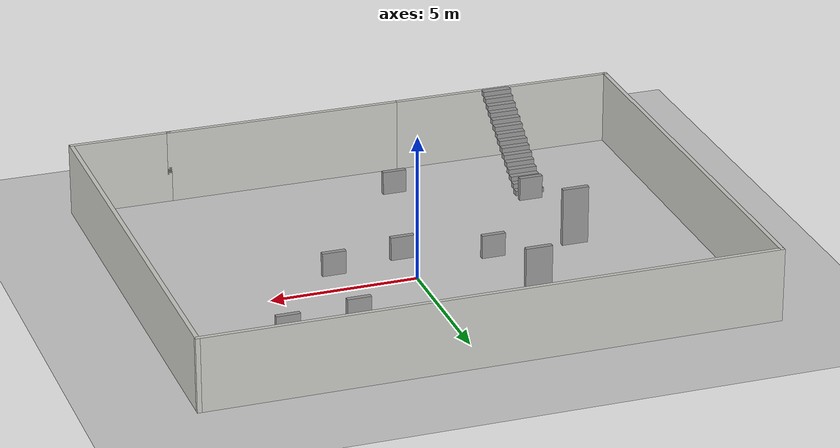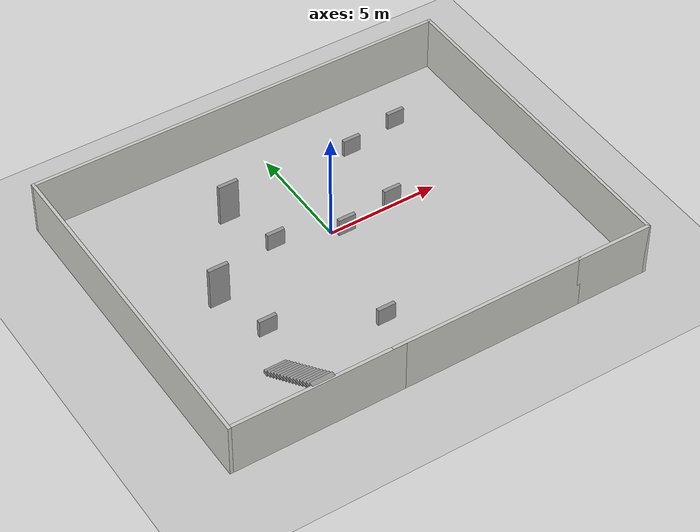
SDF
<sdf version="1.6">
 <world name="default">
  <light name="sun" type="directional">
   <pose>0 0 10 0 -0 0</pose>
   <diffuse>0.8 0.8 0.8 1</diffuse>
   <specular>0.2 0.2 0.2 1</specular>
   <attenuation>
    <range>1000</range>
    <constant>0.9</constant>
    <linear>0.01</linear>
    <quadratic>0.001</quadratic>
   </attenuation>
   <direction>-0.5 0.1 -0.9</direction>
   <spot><inner_angle>0</inner_angle><outer_angle>0</outer_angle><falloff>0</falloff></spot>
  </light>
  <model name="ground_plane">
   <static>1</static>
   <link name="link">
    <collision name="collision">
     <geometry><plane><normal>0 0 1</normal><size>100 100</size></plane></geometry>
     <surface>
      <contact><collide_bitmask>65535</collide_bitmask></contact>
      <friction><ode><mu>100</mu><mu2>50</mu2></ode></friction>
     </surface>
    </collision>
    <visual name="visual">
     <cast_shadows>0</cast_shadows>
     <geometry><plane><normal>0 0 1</normal><size>100 100</size></plane></geometry>
     <material>
      <script><uri>file://media/materials/scripts/gazebo.material</uri><name>Gazebo/Grey</name></script>
     </material>
    </visual>
   </link>
  </model>
  <gravity>0 0 -9.8</gravity>
  <magnetic_field>6e-06 2.3e-05 -4.2e-05</magnetic_field>
  <atmosphere type="adiabatic"/>
  <physics type="ode">
   <max_step_size>0.001</max_step_size>
   <real_time_factor>1</real_time_factor>
   <real_time_update_rate>1000</real_time_update_rate>
  </physics>
  <scene><ambient>0.4 0.4 0.4 1</ambient><background>0.7 0.7 0.7 1</background><shadows>1</shadows></scene>
  <spherical_coordinates>
   <surface_model>EARTH_WGS84</surface_model>
   <latitude_deg>0</latitude_deg>
   <longitude_deg>0</longitude_deg>
   <elevation>0</elevation>
   <heading_deg>0</heading_deg>
  </spherical_coordinates>
  <model name="my_environment.world">
   <pose>-0.288058 -0.977413 0 0 -0 0</pose>
   <link name="Stairs_0">
    <visual name="Stairs_0_Visual_0">
     <pose>-5.47566 -4.16051 0.083333 0 -0 0</pose>
     <geometry><box><size>1 0.233333 0.166667</size></box></geometry>
     <material>
      <script><uri>file://media/materials/scripts/gazebo.material</uri><name>Gazebo/Grey</name></script>
      <ambient>1 1 1 1</ambient>
     </material>
     <meta><layer>0</layer></meta>
    </visual>
    <collision name="Stairs_0_Collision_0">
     <geometry><box><size>1 0.233333 0.166667</size></box></geometry>
     <pose>-5.47566 -4.16051 0.083333 0 -0 0</pose>
    </collision>
    <visual name="Stairs_0_Visual_1">
     <pose>-5.47566 -4.39385 0.25 0 -0 0</pose>
     <geometry><box><size>1 0.233333 0.166667</size></box></geometry>
     <material>
      <script><uri>file://media/materials/scripts/gazebo.material</uri><name>Gazebo/Grey</name></script>
      <ambient>1 1 1 1</ambient>
     </material>
     <meta><layer>0</layer></meta>
    </visual>
    <collision name="Stairs_0_Collision_1">
     <geometry><box><size>1 0.233333 0.166667</size></box></geometry>
     <pose>-5.47566 -4.39385 0.25 0 -0 0</pose>
    </collision>
    <visual name="Stairs_0_Visual_2">
     <pose>-5.47566 -4.62718 0.416667 0 -0 0</pose>
     <geometry><box><size>1 0.233333 0.166667</size></box></geometry>
     <material>
      <script><uri>file://media/materials/scripts/gazebo.material</uri><name>Gazebo/Grey</name></script>
      <ambient>1 1 1 1</ambient>
     </material>
     <meta><layer>0</layer></meta>
    </visual>
    <collision name="Stairs_0_Collision_2">
     <geometry><box><size>1 0.233333 0.166667</size></box></geometry>
     <pose>-5.47566 -4.62718 0.416667 0 -0 0</pose>
    </collision>
    <visual name="Stairs_0_Visual_3">
     <pose>-5.47566 -4.86051 0.583333 0 -0 0</pose>
     <geometry><box><size>1 0.233333 0.166667</size></box></geometry>
     <material>
      <script><uri>file://media/materials/scripts/gazebo.material</uri><name>Gazebo/Grey</name></script>
      <ambient>1 1 1 1</ambient>
     </material>
     <meta><layer>0</layer></meta>
    </visual>
    <collision name="Stairs_0_Collision_3">
     <geometry><box><size>1 0.233333 0.166667</size></box></geometry>
     <pose>-5.47566 -4.86051 0.583333 0 -0 0</pose>
    </collision>
    <visual name="Stairs_0_Visual_4">
     <pose>-5.47566 -5.09385 0.75 0 -0 0</pose>
     <geometry><box><size>1 0.233333 0.166667</size></box></geometry>
     <material>
      <script><uri>file://media/materials/scripts/gazebo.material</uri><name>Gazebo/Grey</name></script>
      <ambient>1 1 1 1</ambient>
     </material>
     <meta><layer>0</layer></meta>
    </visual>
    <collision name="Stairs_0_Collision_4">
     <geometry><box><size>1 0.233333 0.166667</size></box></geometry>
     <pose>-5.47566 -5.09385 0.75 0 -0 0</pose>
    </collision>
    <visual name="Stairs_0_Visual_5">
     <pose>-5.47566 -5.32718 0.916667 0 -0 0</pose>
     <geometry><box><size>1 0.233333 0.166667</size></box></geometry>
     <material>
      <script><uri>file://media/materials/scripts/gazebo.material</uri><name>Gazebo/Grey</name></script>
      <ambient>1 1 1 1</ambient>
     </material>
     <meta><layer>0</layer></meta>
    </visual>
    <collision name="Stairs_0_Collision_5">
     <geometry><box><size>1 0.233333 0.166667</size></box></geometry>
     <pose>-5.47566 -5.32718 0.916667 0 -0 0</pose>
    </collision>
    <visual name="Stairs_0_Visual_6">
     <pose>-5.47566 -5.56051 1.08333 0 -0 0</pose>
     <geometry><box><size>1 0.233333 0.166667</size></box></geometry>
     <material>
      <script><uri>file://media/materials/scripts/gazebo.material</uri><name>Gazebo/Grey</name></script>
      <ambient>1 1 1 1</ambient>
     </material>
     <meta><layer>0</layer></meta>
    </visual>
    <collision name="Stairs_0_Collision_6">
     <geometry><box><size>1 0.233333 0.166667</size></box></geometry>
     <pose>-5.47566 -5.56051 1.08333 0 -0 0</pose>
    </collision>
    <visual name="Stairs_0_Visual_7">
     <pose>-5.47566 -5.79385 1.25 0 -0 0</pose>
     <geometry><box><size>1 0.233333 0.166667</size></box></geometry>
     <material>
      <script><uri>file://media/materials/scripts/gazebo.material</uri><name>Gazebo/Grey</name></script>
      <ambient>1 1 1 1</ambient>
     </material>
     <meta><layer>0</layer></meta>
    </visual>
    <collision name="Stairs_0_Collision_7">
     <geometry><box><size>1 0.233333 0.166667</size></box></geometry>
     <pose>-5.47566 -5.79385 1.25 0 -0 0</pose>
    </collision>
    <visual name="Stairs_0_Visual_8">
     <pose>-5.47566 -6.02718 1.41667 0 -0 0</pose>
     <geometry><box><size>1 0.233333 0.166667</size></box></geometry>
     <material>
      <script><uri>file://media/materials/scripts/gazebo.material</uri><name>Gazebo/Grey</name></script>
      <ambient>1 1 1 1</ambient>
     </material>
     <meta><layer>0</layer></meta>
    </visual>
    <collision name="Stairs_0_Collision_8">
     <geometry><box><size>1 0.233333 0.166667</size></box></geometry>
     <pose>-5.47566 -6.02718 1.41667 0 -0 0</pose>
    </collision>
    <visual name="Stairs_0_Visual_9">
     <pose>-5.47566 -6.26051 1.58333 0 -0 0</pose>
     <geometry><box><size>1 0.233333 0.166667</size></box></geometry>
     <material>
      <script><uri>file://media/materials/scripts/gazebo.material</uri><name>Gazebo/Grey</name></script>
      <ambient>1 1 1 1</ambient>
     </material>
     <meta><layer>0</layer></meta>
    </visual>
    <collision name="Stairs_0_Collision_9">
     <geometry><box><size>1 0.233333 0.166667</size></box></geometry>
     <pose>-5.47566 -6.26051 1.58333 0 -0 0</pose>
    </collision>
    <visual name="Stairs_0_Visual_10">
     <pose>-5.47566 -6.49385 1.75 0 -0 0</pose>
     <geometry><box><size>1 0.233333 0.166667</size></box></geometry>
     <material>
      <script><uri>file://media/materials/scripts/gazebo.material</uri><name>Gazebo/Grey</name></script>
      <ambient>1 1 1 1</ambient>
     </material>
     <meta><layer>0</layer></meta>
    </visual>
    <collision name="Stairs_0_Collision_10">
     <geometry><box><size>1 0.233333 0.166667</size></box></geometry>
     <pose>-5.47566 -6.49385 1.75 0 -0 0</pose>
    </collision>
    <visual name="Stairs_0_Visual_11">
     <pose>-5.47566 -6.72718 1.91667 0 -0 0</pose>
     <geometry><box><size>1 0.233333 0.166667</size></box></geometry>
     <material>
      <script><uri>file://media/materials/scripts/gazebo.material</uri><name>Gazebo/Grey</name></script>
      <ambient>1 1 1 1</ambient>
     </material>
     <meta><layer>0</layer></meta>
    </visual>
    <collision name="Stairs_0_Collision_11">
     <geometry><box><size>1 0.233333 0.166667</size></box></geometry>
     <pose>-5.47566 -6.72718 1.91667 0 -0 0</pose>
    </collision>
    <visual name="Stairs_0_Visual_12">
     <pose>-5.47566 -6.96051 2.08333 0 -0 0</pose>
     <geometry><box><size>1 0.233333 0.166667</size></box></geometry>
     <material>
      <script><uri>file://media/materials/scripts/gazebo.material</uri><name>Gazebo/Grey</name></script>
      <ambient>1 1 1 1</ambient>
     </material>
     <meta><layer>0</layer></meta>
    </visual>
    <collision name="Stairs_0_Collision_12">
     <geometry><box><size>1 0.233333 0.166667</size></box></geometry>
     <pose>-5.47566 -6.96051 2.08333 0 -0 0</pose>
    </collision>
    <visual name="Stairs_0_Visual_13">
     <pose>-5.47566 -7.19385 2.25 0 -0 0</pose>
     <geometry><box><size>1 0.233333 0.166667</size></box></geometry>
     <material>
      <script><uri>file://media/materials/scripts/gazebo.material</uri><name>Gazebo/Grey</name></script>
      <ambient>1 1 1 1</ambient>
     </material>
     <meta><layer>0</layer></meta>
    </visual>
    <collision name="Stairs_0_Collision_13">
     <geometry><box><size>1 0.233333 0.166667</size></box></geometry>
     <pose>-5.47566 -7.19385 2.25 0 -0 0</pose>
    </collision>
    <visual name="Stairs_0_Visual_14">
     <pose>-5.47566 -7.42718 2.41667 0 -0 0</pose>
     <geometry><box><size>1 0.233333 0.166667</size></box></geometry>
     <material>
      <script><uri>file://media/materials/scripts/gazebo.material</uri><name>Gazebo/Grey</name></script>
      <ambient>1 1 1 1</ambient>
     </material>
     <meta><layer>0</layer></meta>
    </visual>
    <collision name="Stairs_0_Collision_14">
     <geometry><box><size>1 0.233333 0.166667</size></box></geometry>
     <pose>-5.47566 -7.42718 2.41667 0 -0 0</pose>
    </collision>
   </link>
   <link name="Wall_1">
    <collision name="Wall_1_Collision">
     <geometry><box><size>8.75 0.15 2.5</size></box></geometry>
     <pose>0 0 1.25 0 -0 0</pose>
    </collision>
    <visual name="Wall_1_Visual">
     <pose>0 0 1.25 0 -0 0</pose>
     <geometry><box><size>8.75 0.15 2.5</size></box></geometry>
     <material>
      <script><uri>file://media/materials/scripts/gazebo.material</uri><name>Gazebo/CeilingTiled</name></script>
      <ambient>1 0.764706 0.305882 1</ambient>
     </material>
     <meta><layer>0</layer></meta>
    </visual>
    <pose>1.9 -7.55 0 0 -0 0</pose>
   </link>
   <link name="Wall_10">
    <collision name="Wall_10_Collision">
     <geometry><box><size>7.75 0.15 2.5</size></box></geometry>
     <pose>0 0 1.25 0 -0 0</pose>
    </collision>
    <visual name="Wall_10_Visual">
     <pose>0 0 1.25 0 -0 0</pose>
     <geometry><box><size>7.75 0.15 2.5</size></box></geometry>
     <material>
      <script><uri>file://media/materials/scripts/gazebo.material</uri><name>Gazebo/CeilingTiled</name></script>
      <ambient>1 0.764706 0.305882 1</ambient>
     </material>
     <meta><layer>0</layer></meta>
    </visual>
    <pose>-5.75 -7.55 0 0 -0 0</pose>
   </link>
   <link name="Wall_3">
    <collision name="Wall_3_Collision">
     <geometry><box><size>3.5 0.15 2.5</size></box></geometry>
     <pose>0 0 1.25 0 -0 0</pose>
    </collision>
    <visual name="Wall_3_Visual">
     <pose>0 0 1.25 0 -0 0</pose>
     <geometry><box><size>3.5 0.15 2.5</size></box></geometry>
     <material>
      <script><uri>file://media/materials/scripts/gazebo.material</uri><name>Gazebo/CeilingTiled</name></script>
      <ambient>1 0.764706 0.305882 1</ambient>
     </material>
     <meta><layer>0</layer></meta>
    </visual>
    <pose>7.875 -7.55 0 0 -0 0</pose>
   </link>
   <link name="Wall_5">
    <collision name="Wall_5_Collision">
     <geometry><box><size>15.25 0.15 2.5</size></box></geometry>
     <pose>0 0 1.25 0 -0 0</pose>
    </collision>
    <visual name="Wall_5_Visual">
     <pose>0 0 1.25 0 -0 0</pose>
     <geometry><box><size>15.25 0.15 2.5</size></box></geometry>
     <material>
      <script><uri>file://media/materials/scripts/gazebo.material</uri><name>Gazebo/CeilingTiled</name></script>
      <ambient>1 0.764706 0.305882 1</ambient>
     </material>
     <meta><layer>0</layer></meta>
    </visual>
    <pose>9.55 -0 0 0 -0 1.5708</pose>
   </link>
   <link name="Wall_7">
    <collision name="Wall_7_Collision">
     <geometry><box><size>19.25 0.15 2.5</size></box></geometry>
     <pose>0 0 1.25 0 -0 0</pose>
    </collision>
    <visual name="Wall_7_Visual">
     <pose>0 0 1.25 0 -0 0</pose>
     <geometry><box><size>19.25 0.15 2.5</size></box></geometry>
     <material>
      <script><uri>file://media/materials/scripts/gazebo.material</uri><name>Gazebo/CeilingTiled</name></script>
      <ambient>1 0.764706 0.305882 1</ambient>
     </material>
     <meta><layer>0</layer></meta>
    </visual>
    <pose>0 7.55 0 0 -0 3.14159</pose>
   </link>
   <link name="Wall_8">
    <collision name="Wall_8_Collision">
     <geometry><box><size>15.25 0.15 2.5</size></box></geometry>
     <pose>0 0 1.25 0 -0 0</pose>
    </collision>
    <visual name="Wall_8_Visual">
     <pose>0 0 1.25 0 -0 0</pose>
     <geometry><box><size>15.25 0.15 2.5</size></box></geometry>
     <material>
      <script><uri>file://media/materials/scripts/gazebo.material</uri><name>Gazebo/CeilingTiled</name></script>
      <ambient>1 0.764706 0.305882 1</ambient>
     </material>
     <meta><layer>0</layer></meta>
    </visual>
    <pose>-9.55 -0 0 0 -0 -1.5708</pose>
   </link>
   <link name="Window_0">
    <collision name="Window_0_Collision">
     <geometry><box><size>0.8 0.17 0.8</size></box></geometry>
     <pose>0 0 0.4 0 -0 0</pose>
    </collision>
    <visual name="Window_0_Visual">
     <pose>0 0 0.4 0 -0 0</pose>
     <geometry><box><size>0.8 0.17 0.8</size></box></geometry>
     <material>
      <script><uri>file://media/materials/scripts/gazebo.material</uri><name>Gazebo/Grey</name></script>
     </material>
    </visual>
    <pose>-0.81 -4.66 0.5 0 -0 0</pose>
   </link>
   <static>1</static>
  </model>
  <model name="Untitled">
   <pose>-2.84388 1.0005 0 0 -0 0</pose>
   <link name="Door_0">
    <collision name="Door_0_Collision">
     <geometry><box><size>0.9 0.17 2</size></box></geometry>
     <pose>0 0 1 0 -0 0</pose>
    </collision>
    <visual name="Door_0_Visual">
     <pose>0 0 1 0 -0 0</pose>
     <geometry><box><size>0.9 0.17 2</size></box></geometry>
     <material>
      <script><uri>file://media/materials/scripts/gazebo.material</uri><name>Gazebo/Grey</name></script>
     </material>
    </visual>
    <pose>-2.94 -1.91 0 0 -0 0</pose>
   </link>
   <link name="Window_0">
    <collision name="Window_0_Collision">
     <geometry><box><size>0.8 0.17 0.8</size></box></geometry>
     <pose>0 0 0.4 0 -0 0</pose>
    </collision>
    <visual name="Window_0_Visual">
     <pose>0 0 0.4 0 -0 0</pose>
     <geometry><box><size>0.8 0.17 0.8</size></box></geometry>
     <material>
      <script><uri>file://media/materials/scripts/gazebo.material</uri><name>Gazebo/Grey</name></script>
     </material>
    </visual>
    <pose>-2.42 -4.68 0.5 0 -0 0</pose>
   </link>
   <link name="Window_1">
    <collision name="Window_1_Collision">
     <geometry><box><size>0.8 0.17 0.8</size></box></geometry>
     <pose>0 0 0.4 0 -0 0</pose>
    </collision>
    <visual name="Window_1_Visual">
     <pose>0 0 0.4 0 -0 0</pose>
     <geometry><box><size>0.8 0.17 0.8</size></box></geometry>
     <material>
      <script><uri>file://media/materials/scripts/gazebo.material</uri><name>Gazebo/Grey</name></script>
     </material>
    </visual>
    <pose>3.16 -1.66 0.5 0 -0 0</pose>
   </link>
   <link name="Window_2">
    <collision name="Window_2_Collision">
     <geometry><box><size>0.8 0.17 0.8</size></box></geometry>
     <pose>0 0 0.4 0 -0 0</pose>
    </collision>
    <visual name="Window_2_Visual">
     <pose>0 0 0.4 0 -0 0</pose>
     <geometry><box><size>0.8 0.17 0.8</size></box></geometry>
     <material>
      <script><uri>file://media/materials/scripts/gazebo.material</uri><name>Gazebo/Grey</name></script>
     </material>
    </visual>
    <pose>5.62 -1.24 0.5 0 -0 0</pose>
   </link>
   <static>1</static>
  </model>
  <model name="Untitled_0">
   <pose>-0.107358 4.84529 0 0 -0 0</pose>
   <link name="Door_0">
    <collision name="Door_0_Collision">
     <geometry><box><size>0.9 0.17 2</size></box></geometry>
     <pose>0 0 1 0 -0 0</pose>
    </collision>
    <visual name="Door_0_Visual">
     <pose>0 0 1 0 -0 0</pose>
     <geometry><box><size>0.9 0.17 2</size></box></geometry>
     <material>
      <script><uri>file://media/materials/scripts/gazebo.material</uri><name>Gazebo/Grey</name></script>
     </material>
    </visual>
    <pose>-2.94 -1.91 0 0 -0 0</pose>
   </link>
   <link name="Window_0">
    <collision name="Window_0_Collision">
     <geometry><box><size>0.8 0.17 0.8</size></box></geometry>
     <pose>0 0 0.4 0 -0 0</pose>
    </collision>
    <visual name="Window_0_Visual">
     <pose>0 0 0.4 0 -0 0</pose>
     <geometry><box><size>0.8 0.17 0.8</size></box></geometry>
     <material>
      <script><uri>file://media/materials/scripts/gazebo.material</uri><name>Gazebo/Grey</name></script>
     </material>
    </visual>
    <pose>-2.42 -4.68 0.5 0 -0 0</pose>
   </link>
   <link name="Window_1">
    <collision name="Window_1_Collision">
     <geometry><box><size>0.8 0.17 0.8</size></box></geometry>
     <pose>0 0 0.4 0 -0 0</pose>
    </collision>
    <visual name="Window_1_Visual">
     <pose>0 0 0.4 0 -0 0</pose>
     <geometry><box><size>0.8 0.17 0.8</size></box></geometry>
     <material>
      <script><uri>file://media/materials/scripts/gazebo.material</uri><name>Gazebo/Grey</name></script>
     </material>
    </visual>
    <pose>3.16 -1.66 0.5 0 -0 0</pose>
   </link>
   <link name="Window_2">
    <collision name="Window_2_Collision">
     <geometry><box><size>0.8 0.17 0.8</size></box></geometry>
     <pose>0 0 0.4 0 -0 0</pose>
    </collision>
    <visual name="Window_2_Visual">
     <pose>0 0 0.4 0 -0 0</pose>
     <geometry><box><size>0.8 0.17 0.8</size></box></geometry>
     <material>
      <script><uri>file://media/materials/scripts/gazebo.material</uri><name>Gazebo/Grey</name></script>
     </material>
    </visual>
    <pose>5.62 -1.24 0.5 0 -0 0</pose>
   </link>
   <static>1</static>
  </model>
 </world>
</sdf>
